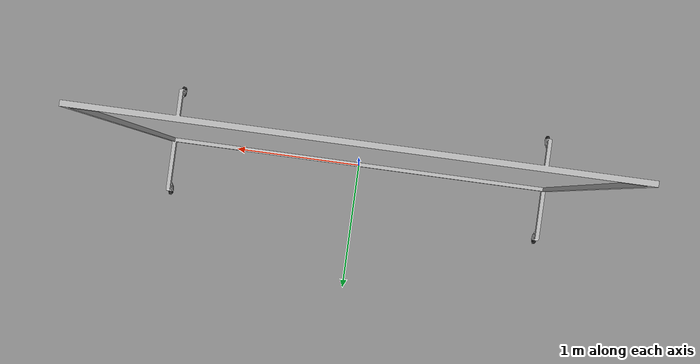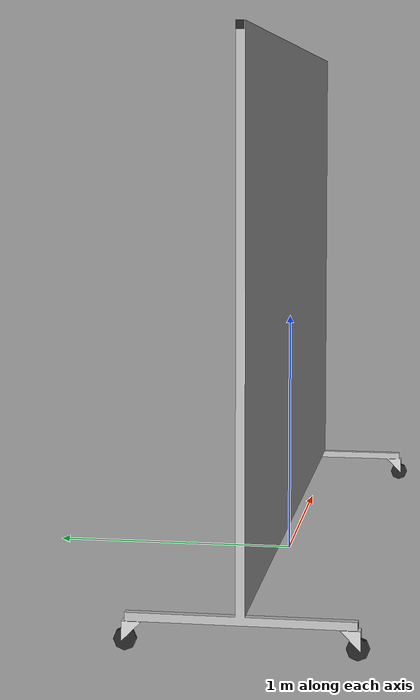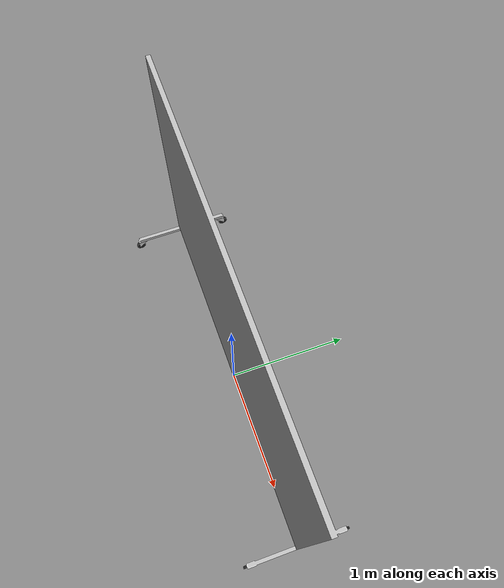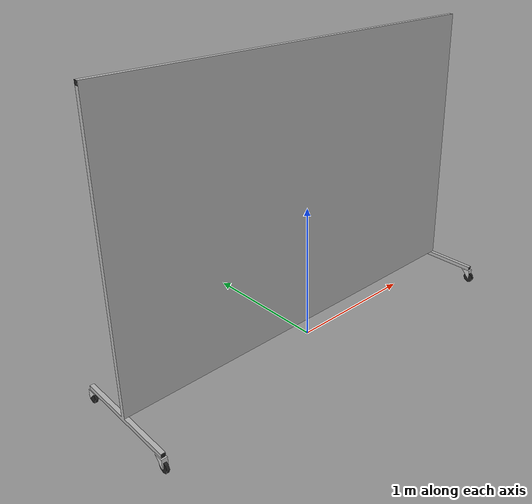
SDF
<?xml version='1.0'?>
<sdf version='1.4'>
  <model name="textured panel">
    <static>true</static>
    <pose>0 0 0 0 0 0</pose>

    <link name="textured panel">
      <visual name="panel">
        <geometry>
          <mesh>
            <uri>model://textured_panel_3m4/textured_panel_3m.dae</uri>
          </mesh>
        </geometry>
      </visual>
      <collision name="panel_collision">
        <geometry>
          <mesh>
            <uri>model://textured_panel_3m4/textured_panel_3m.dae</uri>
          </mesh>
        </geometry>
      </collision>
    </link>

  </model>
</sdf>
